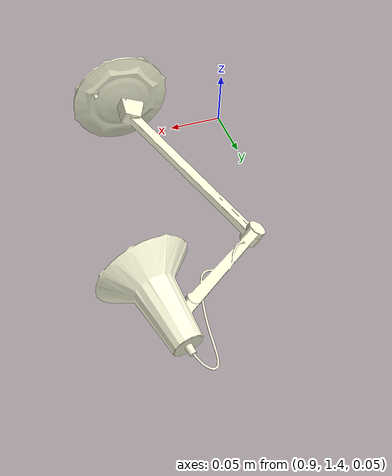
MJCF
<mujoco model="mesh_model">
    <asset>
        <mesh name="lamp" file="lamp.obj" scale = "0.005 0.005 0.005"/>
    </asset>
    <worldbody>
        <body pos="1.0 1.4 0.1"> <!-- Move to center of the plane -->
            <!-- Apply scaling and 90-degree rotation around the Z-axis -->
            <geom type="mesh" mesh="lamp" contype="0" conaffinity="0"
                  euler="0 -30 2.5"
                  rgba="1 1 0.878 1"/>
        </body>
    </worldbody>
</mujoco>
